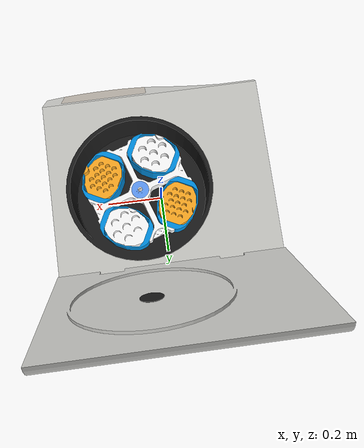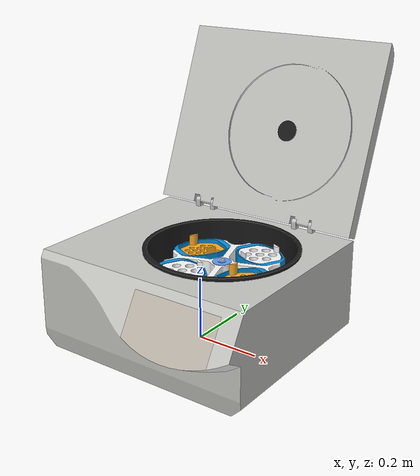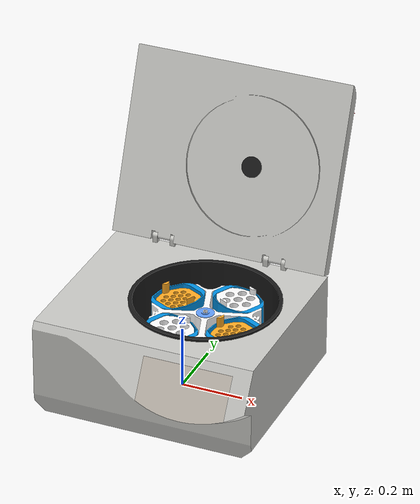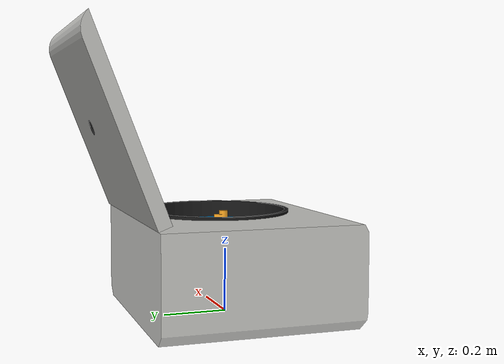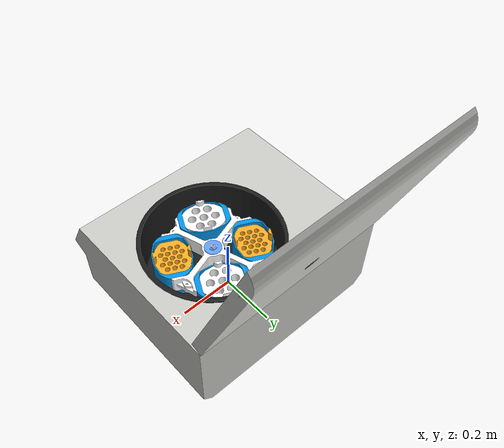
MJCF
<?xml version='1.0' encoding='utf-8'?>
<mujoco model="centrifuge_eppendorf_5910_ri">
  <compiler angle="radian" autolimits="true" assetdir="../../assets" />
  <default>
    <default class="visual">
      <geom type="mesh" contype="0" conaffinity="0" density="0" group="2" />
      <mesh inertia="shell" />
    </default>
    <default class="inertia">
      <geom type="mesh" contype="0" conaffinity="0" group="5" />
      <mesh inertia="exact" />
    </default>
    <default class="collision">
      <geom type="mesh" contype="0" conaffinity="1" density="0" group="3" />
    </default>
  </default>
  <option gravity="0 0 0" />
  <asset>
    <mesh class="visual" name="body-visual-0" file="instrument/centrifuge_eppendorf_5910_ri/body-visual-0.obj" />
    <material name="body-0" rgba="0.78431373 0.78431373 0.76862745 1" metallic="0.0" roughness="1.0" />
    <mesh class="visual" name="body-visual-1" file="instrument/centrifuge_eppendorf_5910_ri/body-visual-1.obj" />
    <material name="body-1" rgba="0.101961 0.101961 0.101961 1" metallic="0.0" roughness="1.0" />
    <mesh class="visual" name="body-visual-2" file="instrument/centrifuge_eppendorf_5910_ri/body-visual-2.obj" />
    <texture name="body-0" type="2d" file="instrument/centrifuge_eppendorf_5910_ri/body-0.png" />
    <material name="body-2" rgba="1 1 1 1" metallic="0.0" roughness="1.0" texture="body-0" />
    <mesh class="inertia" name="body-inertia" file="instrument/centrifuge_eppendorf_5910_ri/body-inertia.obj" />
    <mesh class="collision" name="body-collision-0" file="instrument/centrifuge_eppendorf_5910_ri/body-collision-0.obj" />
    <mesh class="visual" name="lid-visual-0" file="instrument/centrifuge_eppendorf_5910_ri/lid-visual-0.obj" />
    <material name="lid-0" rgba="0.101961 0.101961 0.101961 1" metallic="0.0" roughness="1.0" />
    <mesh class="visual" name="lid-visual-1" file="instrument/centrifuge_eppendorf_5910_ri/lid-visual-1.obj" />
    <material name="lid-1" rgba="0.78431373 0.78431373 0.76862745 1" metallic="0.0" roughness="1.0" />
    <mesh class="inertia" name="lid-inertia" file="instrument/centrifuge_eppendorf_5910_ri/lid-inertia.obj" />
    <mesh class="visual" name="rotor-body-visual-0" file="instrument/centrifuge_eppendorf_5910_ri/rotor-body-visual-0.obj" />
    <material name="rotor-body-0" rgba="1 1 1 1" metallic="0.0" roughness="1.0" />
    <mesh class="visual" name="rotor-body-visual-1" file="instrument/centrifuge_eppendorf_5910_ri/rotor-body-visual-1.obj" />
    <material name="rotor-body-1" rgba="0.380392 0.615686 0.980392 1" metallic="0.0" roughness="1.0" />
    <mesh class="inertia" name="rotor-body-inertia" file="instrument/centrifuge_eppendorf_5910_ri/rotor-body-inertia.obj" />
    <mesh class="visual" name="rotor-bucket-visual-0" file="instrument/centrifuge_eppendorf_5910_ri/rotor-bucket-visual-0.obj" />
    <material name="rotor-bucket-0" rgba="0 0.568627 0.894118 1" metallic="0.0" roughness="1.0" />
    <mesh class="inertia" name="rotor-bucket-inertia" file="instrument/centrifuge_eppendorf_5910_ri/rotor-bucket-inertia.obj" />
    <mesh class="visual" name="adapter-7x50-visual-0" file="instrument/centrifuge_eppendorf_5910_ri/adapter-7x50-visual-0.obj" />
    <material name="adapter-7x50-0" rgba="1 1 1 1" metallic="0.0" roughness="1.0" />
    <mesh class="inertia" name="adapter-7x50-inertia" file="instrument/centrifuge_eppendorf_5910_ri/adapter-7x50-inertia.obj" />
    <mesh class="visual" name="adapter-17x15-visual-0" file="instrument/centrifuge_eppendorf_5910_ri/adapter-17x15-visual-0.obj" />
    <material name="adapter-17x15-0" rgba="1 0.670588 0.137255 1" metallic="0.0" roughness="1.0" />
    <mesh class="inertia" name="adapter-17x15-inertia" file="instrument/centrifuge_eppendorf_5910_ri/adapter-17x15-inertia.obj" />
  </asset>
  <extension />
  <worldbody>
    <body name="body" pos="0 0 0.05654646" quat="1 0 0 0">
      <geom class="visual" mesh="body-visual-0" material="body-0" />
      <geom class="visual" mesh="body-visual-1" material="body-1" />
      <geom class="visual" mesh="body-visual-2" material="body-2" />
      <geom class="inertia" mesh="body-inertia" density="1000" />
      <geom class="collision" name="body-inertia.002" mesh="body-collision-0" />
      <geom class="collision" type="box" size="0.36135778 0.29667471 0.07082613" pos="0 0 0.01546793" />
      <geom class="collision" type="box" size="0.36289674 0.03628967 0.08310333" pos="0 0.26516002 0.17030346" />
      <geom class="collision" type="box" size="0.30627608 0.03644686 0.08514473" pos="0.32315937 -0.00782504 0.16854638" quat="0.70756862 0.00117126 -0.00124823 -0.70664257" />
      <geom class="collision" type="box" size="0.30627608 0.1038276 0.08514473" pos="-0.25767905 -0.00782504 0.16854638" quat="0.70756862 0.00117126 -0.00124823 -0.70664257" />
      <geom class="collision" type="box" size="0.36289674 0.05262003 0.08310333" pos="0 -0.25960118 0.17030346" />
      <geom class="collision" type="box" size="0.0960729 0.0230575 0.08492844" pos="0.24200605 -0.16945544 0.16854638" quat="-0.3531246 -0.00095042 -0.00093073 0.93557535" />
      <geom class="collision" type="box" size="0.0960729 0.0230575 0.08492844" pos="-0.10209555 0.1908775 0.16854638" quat="-0.3531246 -0.00095042 -0.00093073 0.93557535" />
      <geom class="collision" type="box" size="0.09607289 0.0230575 0.08492844" pos="-0.10704812 -0.16564459 0.1692524" quat="0.91103685 0.0000146 0.00133017 -0.41232279" />
      <geom class="collision" type="box" size="0.09607289 0.0230575 0.08492844" pos="0.25120223 0.18449309 0.1692524" quat="0.91103685 0.0000146 0.00133017 -0.41232279" />
      <body name="lid" pos="-0 0.38006762 0.56668099" quat="-0.56526372 0.82491026 0 0">
        <site name="lid" pos="0.36919737 -0.20 0.02106472" quat="-1 1 1 -1" size="0.001" rgba="1 0 0 1"/>
        <joint name="lid" type="hinge" pos="-0.2266712 0.30333889 0.02083411" axis="1 -0 -0" range="0 1.94" stiffness="27.5" springref="0" damping="20"/>
        <geom class="visual" mesh="lid-visual-0" material="lid-0" />
        <geom class="visual" mesh="lid-visual-1" material="lid-1" />
        <geom class="inertia" mesh="lid-inertia" density="1000" />
        <geom class="collision" type="box" size="0.29593109 0.02106472 0.36919737" pos="0.00669231 0.01305942 0.02087301" quat="0.49807294 0.50168699 0.49849278 0.50173545" />
      </body>
      <body name="rotor-body" pos="0.07134309 0.0116669 0.20058534" quat="0.80993986 0 0 -0.58651293">
        <joint name="rotor-body" type="hinge" axis="0 0 1" range="-180 180"/>
        <geom class="visual" mesh="rotor-body-visual-0" material="rotor-body-0" />
        <geom class="visual" mesh="rotor-body-visual-1" material="rotor-body-1" />
        <geom class="inertia" mesh="rotor-body-inertia" density="1000" />
        <geom class="collision" type="box" size="0.16315603 0.0081578 0.02871547" pos="0.00038151 0.00010916 -0.01821184" />
        <geom class="collision" type="box" size="0.16315606 0.0081578 0.02871547" pos="0.00038151 0.00010916 -0.01821184" quat="-0.70637015 0 0 0.70784265" />
        <geom class="collision" type="cylinder" size="0.0345578 0.03003073" pos="-0.0000825 -0.00021007 -0.01738334" />
        <body name="rotor-bucket-0" pos="-0.09273635 0.09278435 -0.07515634" quat="-0.38268179 -0.00111962 0.002703 0.92387558">
          <joint name="rotor-bucket-0" type="hinge" pos="-0.08583492 0.00000001 0.06834238" axis="1 -0 0" range="-1.5708 0" />
          <geom class="visual" mesh="rotor-bucket-visual-0" material="rotor-bucket-0" />
          <geom class="inertia" mesh="rotor-bucket-inertia" density="1000" />
          <body name="adapter-7x50-0" pos="0.00000012 0.00000003 -0.00166672" quat="0 0 -0 1">
            <joint name="adapter-7x50-0" type="slide" axis="0 0 1" range="0 0.08" />
            <geom class="visual" mesh="adapter-7x50-visual-0" material="adapter-7x50-0" />
            <geom class="inertia" mesh="adapter-7x50-inertia" density="1000" />
          </body>
        </body>
        <body name="rotor-bucket-1" pos="-0.09278436 -0.09273635 -0.07515634" quat="0.92387558 0.002703 -0.00111962 -0.38268179">
          <joint name="rotor-bucket-1" type="hinge" pos="-0.08583492 0.00000001 0.06834238" axis="1 -0 0" range="-1.5708 0" />
          <geom class="visual" mesh="rotor-bucket-visual-0" material="rotor-bucket-0" />
          <geom class="inertia" mesh="rotor-bucket-inertia" density="1000" />
          <body name="adapter-17x15-1" pos="0.0000679 0.00000008 -0.01166692" quat="1 0 -0 0">
            <joint name="adapter-17x15-1" type="slide" axis="0 0 1" range="0 0.08" />
            <geom class="visual" mesh="adapter-17x15-visual-0" material="adapter-17x15-0" />
            <geom class="inertia" mesh="adapter-17x15-inertia" density="1000" />
          </body>
        </body>
        <body name="rotor-bucket-2" pos="0.09273635 -0.09278435 -0.07515634" quat="0.92387558 0.002703 0.00111962 0.38268179">
          <joint name="rotor-bucket-2" type="hinge" pos="-0.08583492 0.00000001 0.06834238" axis="1 -0 0" range="-1.5708 0" />
          <geom class="visual" mesh="rotor-bucket-visual-0" material="rotor-bucket-0" />
          <geom class="inertia" mesh="rotor-bucket-inertia" density="1000" />
          <body name="adapter-7x50-1" pos="0.00006777 0.00000002 -0.00166672" quat="1 0 -0 -0">
            <joint name="adapter-7x50-1" type="slide" axis="0 0 1" range="0 0.08" />
            <geom class="visual" mesh="adapter-7x50-visual-0" material="adapter-7x50-0" />
            <geom class="inertia" mesh="adapter-7x50-inertia" density="1000" />
          </body>
        </body>
        <body name="rotor-bucket-3" pos="0.09278436 0.09273635 -0.07515634" quat="0.38268179 0.00111962 0.002703 0.92387558">
          <joint name="rotor-bucket-3" type="hinge" pos="-0.08583492 0.00000001 0.06834238" axis="1 -0 0" range="-1.5708 0" />
          <geom class="visual" mesh="rotor-bucket-visual-0" material="rotor-bucket-0" />
          <geom class="inertia" mesh="rotor-bucket-inertia" density="1000" />
          <body name="adapter-17x15-0" pos="0 0.00000009 -0.01166692" quat="-0 0 -0 1">
            <joint name="adapter-17x15-0" type="slide" axis="0 0 1" range="0 0.08" />
            <geom class="visual" mesh="adapter-17x15-visual-0" material="adapter-17x15-0" />
            <geom class="inertia" mesh="adapter-17x15-inertia" density="1000" />
          </body>
        </body>
      </body>
    </body>
  </worldbody>
  <equality>
    <joint name="lid-lock" joint1="lid" polycoef="1.94" active="false" />
  </equality>
  <actuator />
</mujoco>
